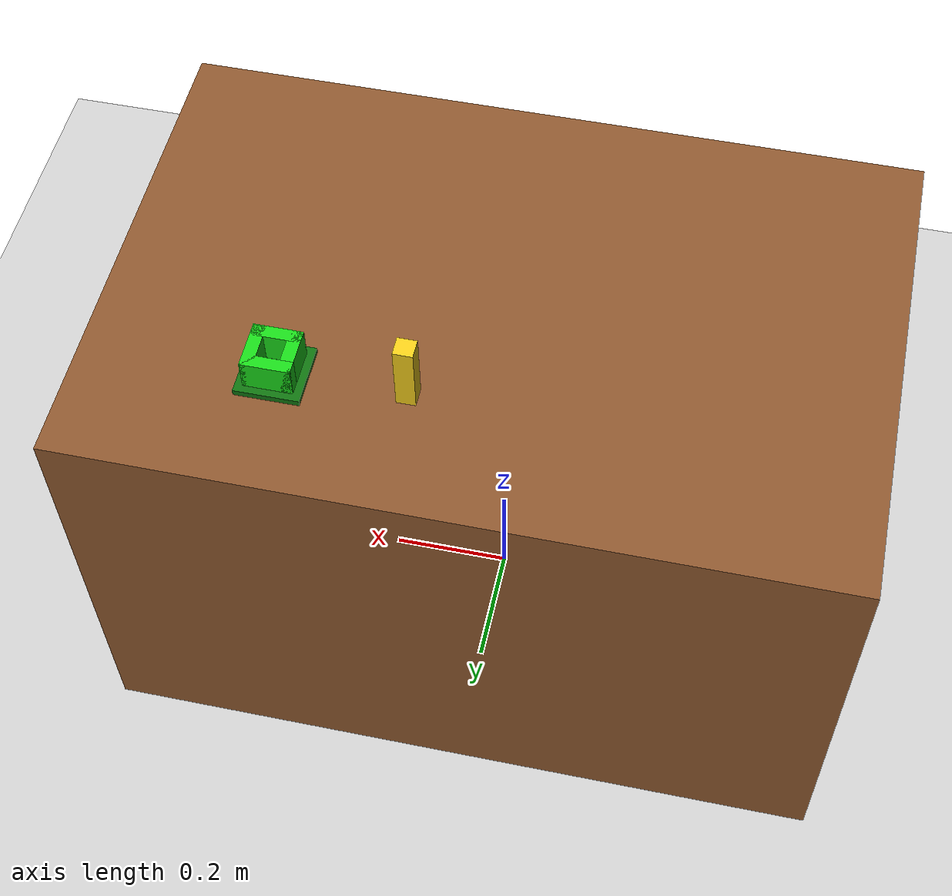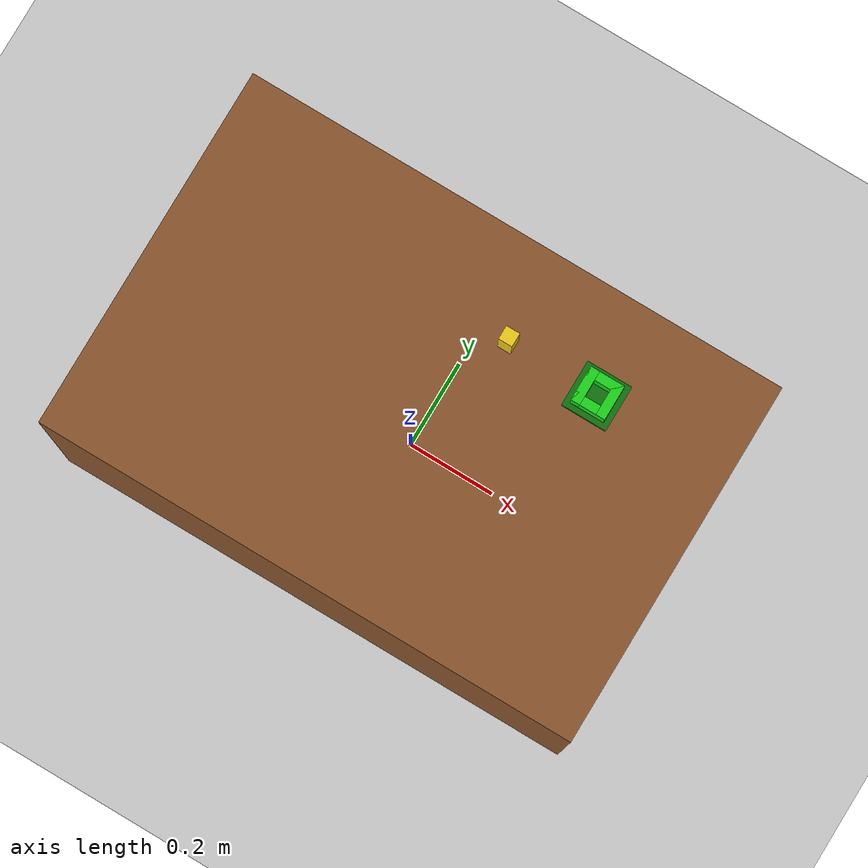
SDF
<?xml version="1.0" ?>
<sdf version="1.7">
  <world name="peg_in_hole_demo">

    <physics name="default_physics" type="ode">
      <max_step_size>0.001</max_step_size>
      <real_time_factor>1</real_time_factor>
      <real_time_update_rate>1000</real_time_update_rate>
      <gravity>0 0 -9.81</gravity>
    </physics>

    <include>
      <uri>https://fuel.gazebosim.org/1.0/OpenRobotics/models/Ground Plane</uri>
    </include>
    <include>
      <uri>https://fuel.gazebosim.org/1.0/OpenRobotics/models/Sun</uri>
    </include>

    <!-- Table (top surface at z = 0.75) -->
    <model name="table">
      <static>true</static>
      <pose>0 0 0.375 0 0 0</pose>
      <link name="link">
        <collision name="col">
          <geometry>
            <box><size>1.2 0.8 0.75</size></box>
          </geometry>
        </collision>
        <visual name="vis">
          <geometry>
            <box><size>1.2 0.8 0.75</size></box>
          </geometry>
          <material>
            <ambient>0.35 0.22 0.12 1</ambient>
            <diffuse>0.55 0.34 0.18 1</diffuse>
            <specular>0.05 0.05 0.05 1</specular>
          </material>
        </visual>
      </link>
    </model>

    <!-- Real square hole made from 4 static walls (a cavity). -->
    <!-- Hole center at (0.35, -0.15) on table top.
         Peg is 30mm x 30mm, hole inner is ~36mm x 36mm (clearance). -->
    <model name="hole_block">
      <static>true</static>
      <pose>0.30 0.20 0.75 0 0 0</pose>

      <link name="link">

        <!-- +X wall -->
        <collision name="col_px">
          <pose>0.028 0 0.03 0 0 0</pose>
          <geometry><box><size>0.02 0.076 0.06</size></box></geometry>
        </collision>
        <visual name="vis_px">
          <pose>0.028 0 0.03 0 0 0</pose>
          <geometry><box><size>0.02 0.076 0.06</size></box></geometry>
          <material>
            <ambient>0.08 0.45 0.08 1</ambient>
            <diffuse>0.10 0.85 0.10 1</diffuse>
            <specular>0.03 0.03 0.03 1</specular>
          </material>
        </visual>

        <!-- -X wall -->
        <collision name="col_nx">
          <pose>-0.028 0 0.03 0 0 0</pose>
          <geometry><box><size>0.02 0.076 0.06</size></box></geometry>
        </collision>
        <visual name="vis_nx">
          <pose>-0.028 0 0.03 0 0 0</pose>
          <geometry><box><size>0.02 0.076 0.06</size></box></geometry>
          <material>
            <ambient>0.08 0.45 0.08 1</ambient>
            <diffuse>0.10 0.85 0.10 1</diffuse>
            <specular>0.03 0.03 0.03 1</specular>
          </material>
        </visual>

        <!-- +Y wall -->
        <collision name="col_py">
          <pose>0 0.028 0.03 0 0 0</pose>
          <geometry><box><size>0.076 0.02 0.06</size></box></geometry>
        </collision>
        <visual name="vis_py">
          <pose>0 0.028 0.03 0 0 0</pose>
          <geometry><box><size>0.076 0.02 0.06</size></box></geometry>
          <material>
            <ambient>0.08 0.45 0.08 1</ambient>
            <diffuse>0.10 0.85 0.10 1</diffuse>
            <specular>0.03 0.03 0.03 1</specular>
          </material>
        </visual>

        <!-- -Y wall -->
        <collision name="col_ny">
          <pose>0 -0.028 0.03 0 0 0</pose>
          <geometry><box><size>0.076 0.02 0.06</size></box></geometry>
        </collision>
        <visual name="vis_ny">
          <pose>0 -0.028 0.03 0 0 0</pose>
          <geometry><box><size>0.076 0.02 0.06</size></box></geometry>
          <material>
            <ambient>0.08 0.45 0.08 1</ambient>
            <diffuse>0.10 0.85 0.10 1</diffuse>
            <specular>0.03 0.03 0.03 1</specular>
          </material>
        </visual>

        <!-- Optional: thin top plate around hole for nicer look -->
        <collision name="col_plate">
          <pose>0 0 0.005 0 0 0</pose>
          <geometry><box><size>0.10 0.10 0.01</size></box></geometry>
        </collision>
        <visual name="vis_plate">
          <pose>0 0 0.005 0 0 0</pose>
          <geometry><box><size>0.10 0.10 0.01</size></box></geometry>
          <material>
            <ambient>0.05 0.25 0.05 1</ambient>
            <diffuse>0.06 0.45 0.06 1</diffuse>
            <specular>0.02 0.02 0.02 1</specular>
          </material>
        </visual>
      </link>
    </model>

    <!-- Square peg (dynamic). 30mm x 30mm x 100mm -->
    <!-- If you want it to start resting on table, keep z = 0.80 (0.75 + 0.05). -->
    <model name="peg">
      <static>false</static>
      <pose>0.10 0.20 0.80 0 0 0</pose>
      <link name="link">
        <inertial>
          <mass>0.05</mass>
          <inertia>
            <ixx>1e-4</ixx><iyy>1e-4</iyy><izz>1e-4</izz>
            <ixy>0</ixy><ixz>0</ixz><iyz>0</iyz>
          </inertia>
        </inertial>
        <collision name="col">
          <geometry>
            <box>
              <size>0.03 0.03 0.13</size>
            </box>
          </geometry>
        </collision>
        <visual name="vis">
          <geometry>
            <box>
              <size>0.03 0.03 0.13</size>
            </box>
          </geometry>
          <material>
            <ambient>0.75 0.60 0.05 1</ambient>
            <diffuse>0.95 0.80 0.10 1</diffuse>
            <specular>0.08 0.08 0.08 1</specular>
          </material>
        </visual>
      </link>
    </model>

  </world>
</sdf>
